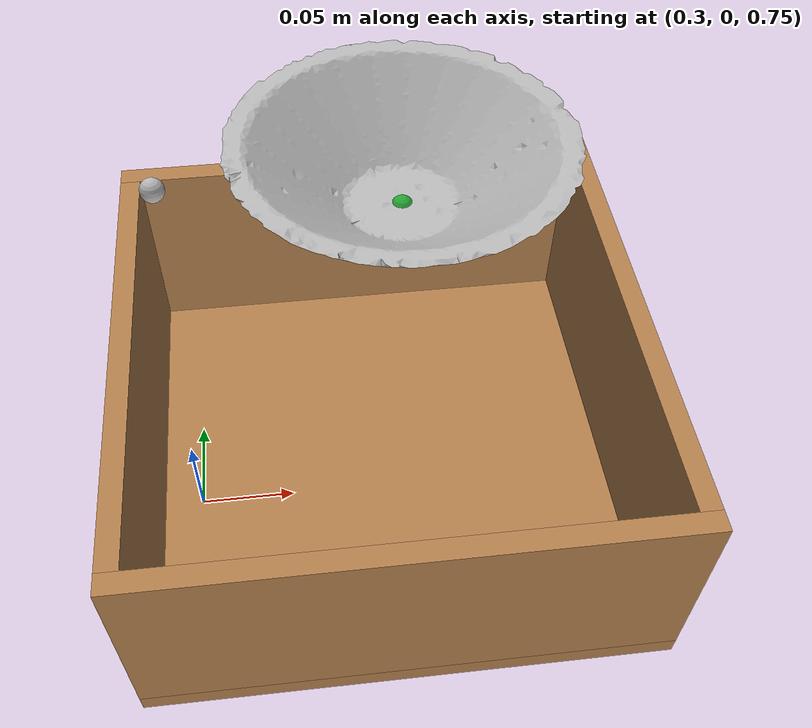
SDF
<sdf version="1.6">
 <world name="scooping_grains">
  <physics type="ode"><real_time_update_rate>10000</real_time_update_rate></physics>
  <include><uri>model://sun</uri></include>
  <include><uri>model://ground_plane</uri></include>
  <include><uri>model://box_grains</uri></include>
  <include><uri>model://tool_scooping_grains</uri></include>
  <plugin name="factory_grains" filename="libfactory_grains.so">
   <n_grains_x>5</n_grains_x>
   <n_grains_y>7</n_grains_y>
   <n_grains_z>5</n_grains_z>
   <grain_radius>0.0145</grain_radius>
   <grain_mass>0.0001</grain_mass>
   <x>0.4</x>
   <y>0</y>
   <z>0.78</z>
   <mu>.1</mu>
   <mu2>.1</mu2>
  </plugin>
  <plugin name="measurer_scooping_grains" filename="libmeasurer_scooping_grains.so"/>
 </world>
</sdf>

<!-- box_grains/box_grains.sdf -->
<sdf version='1.6'>
	<model name='box_grains'>
	<pose>0.4 0 0.775 0 0 0 </pose>
	<static>true</static>

	<link name='box_grains_0'>
		<pose>0 0 0.005 0 0 0 </pose>
		<collision name='box_grains_0_coliision'>
		<geometry>
			<box>
				<size>0.25 0.25 0.01</size>
			</box>
		</geometry>
		<surface>
			<friction>
				<ode>
					<mu>2000</mu>
					<mu2>2000</mu2>
				</ode>
			</friction>
		</surface>
		</collision>

		<visual name='box_grains_0_visual'>
		<geometry>
			<box>
				<size>0.25 0.25 0.01</size>
			</box>
		</geometry>
		<material>
			<script>
				<uri>file://media/materials/scripts/gazebo.material</uri>
				<name>Gazebo/WoodFloor</name>
			</script>
		</material>
		</visual>	</link>

	<link name='box_grains_1'>
		<pose>-0.12 0 0.06 0 0 0 </pose>
		<collision name='box_grains_1_coliision'>
		<geometry>
			<box>
				<size>0.01 0.23 0.1</size>
			</box>
		</geometry>
		<surface>
			<friction>
				<ode>
					<mu>2000</mu>
					<mu2>2000</mu2>
				</ode>
			</friction>
		</surface>
		</collision>

		<visual name='box_grains_1_visual'>
		<geometry>
			<box>
				<size>0.01 0.23 0.1</size>
			</box>
		</geometry>
		<material>
			<script>
				<uri>file://media/materials/scripts/gazebo.material</uri>
				<name>Gazebo/WoodFloor</name>
			</script>
		</material>
		</visual>	</link>

	<link name='box_grains_2'>
		<pose>0.12 0 0.06 0 0 0 </pose>
		<collision name='box_grains_2_coliision'>
		<geometry>
			<box>
				<size>0.01 0.23 0.1</size>
			</box>
		</geometry>
		<surface>
			<friction>
				<ode>
					<mu>2000</mu>
					<mu2>2000</mu2>
				</ode>
			</friction>
		</surface>
		</collision>

		<visual name='box_grains_2_visual'>
		<geometry>
			<box>
				<size>0.01 0.23 0.1</size>
			</box>
		</geometry>
		<material>
			<script>
				<uri>file://media/materials/scripts/gazebo.material</uri>
				<name>Gazebo/WoodFloor</name>
			</script>
		</material>
		</visual>	</link>

	<link name='box_grains_3'>
		<pose>0 -0.12 0.06 0 0 0 </pose>
		<collision name='box_grains_3_coliision'>
		<geometry>
			<box>
				<size>0.25 0.01 0.1</size>
			</box>
		</geometry>
		<surface>
			<friction>
				<ode>
					<mu>2000</mu>
					<mu2>2000</mu2>
				</ode>
			</friction>
		</surface>
		</collision>

		<visual name='box_grains_3_visual'>
		<geometry>
			<box>
				<size>0.25 0.01 0.1</size>
			</box>
		</geometry>
		<material>
			<script>
				<uri>file://media/materials/scripts/gazebo.material</uri>
				<name>Gazebo/WoodFloor</name>
			</script>
		</material>
		</visual>	</link>

	<link name='box_grains_4'>
		<pose>0 0.12 0.06 0 0 0 </pose>
		<collision name='box_grains_4_coliision'>
		<geometry>
			<box>
				<size>0.25 0.01 0.1</size>
			</box>
		</geometry>
		<surface>
			<friction>
				<ode>
					<mu>2000</mu>
					<mu2>2000</mu2>
				</ode>
			</friction>
		</surface>
		</collision>

		<visual name='box_grains_4_visual'>
		<geometry>
			<box>
				<size>0.25 0.01 0.1</size>
			</box>
		</geometry>
		<material>
			<script>
				<uri>file://media/materials/scripts/gazebo.material</uri>
				<name>Gazebo/WoodFloor</name>
			</script>
		</material>
		</visual>	</link>

	</model>
</sdf>

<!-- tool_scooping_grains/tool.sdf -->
<sdf version='1.6'>
<model name="scooper">
<static>false</static>
<pose> 0 0 0 0 0 0 </pose>

<link name='tool'>
	<pose>0.4083 0.0000 0.9739 0.000 0.000 0.000</pose>
	<inertial>
		<pose>0.0000 0.0000 0.0000 0 0 0</pose>
		<mass>0.2530</mass>
	</inertial>
	<collision name='tool_collision'>
		<geometry>
			<mesh><uri>model://tool_scooping_grains/tool.dae</uri></mesh>
		</geometry>
	</collision>
	<visual name='tool_visual'>
		<geometry>
			<mesh><uri>model://tool_scooping_grains/tool.dae</uri></mesh>
		</geometry>
	</visual>
	<sensor name='tool_contact' type='contact'>
		<plugin filename="libgrain_collision.so" name="grain_collision" />
		<contact>
			<collision>tool_collision</collision>
		</contact>
	</sensor>
</link>

<model name="elbow_model">
	<pose>0.31 0.0000 0.9739 0 0 0</pose>
	<static>true</static>
	<link name="elbow_link">
		<pose>0 0 0 0 0 0</pose>
		<visual name="elbow_visual">
			<geometry><sphere>
				<radius>0.005</radius>
			</sphere></geometry>
		</visual>
	</link>
</model>

	<joint name="joint_elbow" type="revolute">
		<parent>tool</parent>
		<child>elbow_link</child>
		<axis>
			<xyz>0 1 0</xyz>
			<use_parent_model_frame>1</use_parent_model_frame>
			<dynamics>
				<friction>0.1</friction>
			</dynamics>
		</axis>
	</joint>

<model name="action_bottom_model">
	<pose>0 0 0 0 0 0</pose>
	<link name="action_bottom_link">
		<pose>0.4083 0.0000 0.9556 0 0 0</pose>
		<visual name="action_bottom_visual">
			<geometry>
				<sphere>
					<radius>0.005</radius>
				</sphere>
			</geometry>
			<material>
				<script>
					<uri>file://media/materials/scripts/gazebo.material</uri>
					<name>Gazebo/Green</name>
				</script>
			</material>
		</visual>
	</link>
</model>

<joint name="joint_action_bottom" type="revolute">
	<parent>tool</parent>
	<child>action_bottom_link</child>
	<axis>
		<xyz>0 1 0</xyz>
		<use_parent_model_frame>1</use_parent_model_frame>
		<dynamics>
			<friction>0.1</friction>
		</dynamics>
	</axis>
</joint>

<plugin filename="libscoop.so" name="scoop"/>

</model>
</sdf>
